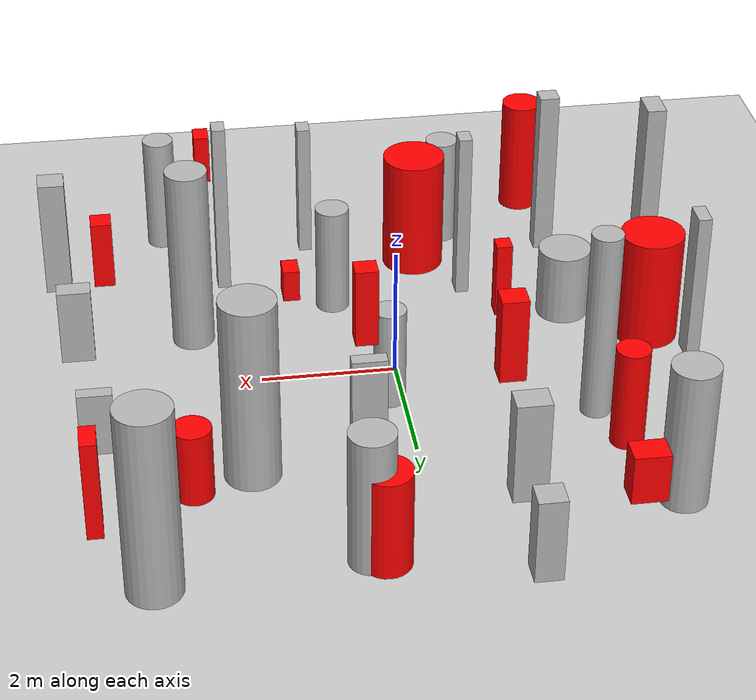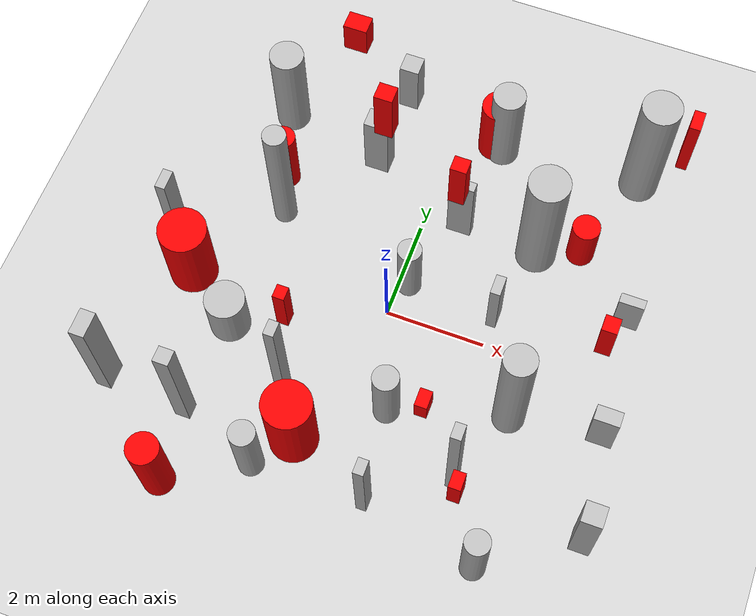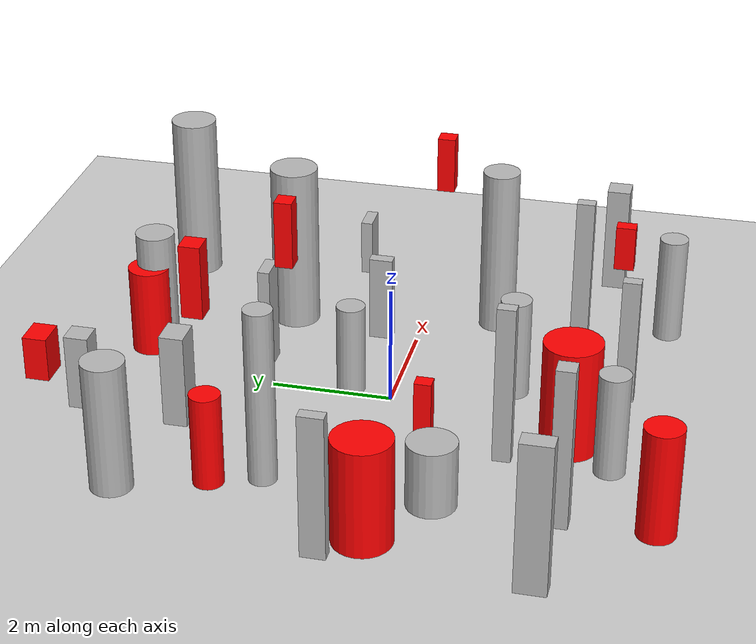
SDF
<?xml version='1.0' encoding='utf-8'?>
<sdf version="1.7">
            <world name="default">
                <light name="sun" type="directional">
                <cast_shadows>1</cast_shadows>
                <pose>0 0 10 0 -0 0</pose>
                <diffuse>0.8 0.8 0.8 1</diffuse>
                <specular>0.2 0.2 0.2 1</specular>
                <attenuation>
                    <range>1000</range>
                    <constant>0.9</constant>
                    <linear>0.01</linear>
                    <quadratic>0.001</quadratic>
                </attenuation>
                <direction>-0.5 0.1 -0.9</direction>
                <spot>
                    <inner_angle>0</inner_angle>
                    <outer_angle>0</outer_angle>
                    <falloff>0</falloff>
                </spot>
                </light>
                <model name="ground_plane">
                <static>1</static>
                <link name="link">
                    <collision name="collision">
                    <geometry>
                        <plane>
                        <normal>0 0 1</normal>
                        <size>100 100</size>
                        </plane>
                    </geometry>
                    <surface>
                        <contact>
                        <collide_bitmask>65535</collide_bitmask>
                        <ode />
                        </contact>
                        <friction>
                        <ode>
                            <mu>100</mu>
                            <mu2>50</mu2>
                        </ode>
                        <torsional>
                            <ode />
                        </torsional>
                        </friction>
                        <bounce />
                    </surface>
                    <max_contacts>10</max_contacts>
                    </collision>
                    <visual name="visual">
                    <cast_shadows>0</cast_shadows>
                    <geometry>
                        <plane>
                        <normal>0 0 1</normal>
                        <size>100 100</size>
                        </plane>
                    </geometry>
                    <material>
                        <script>
                        <uri>file://media/materials/scripts/gazebo.material</uri>
                        <name>Gazebo/Grey</name>
                        </script>
                    </material>
                    </visual>
                    <self_collide>0</self_collide>
                    <enable_wind>0</enable_wind>
                    <kinematic>0</kinematic>
                </link>
                </model>
                <gravity>0 0 -9.8</gravity>
                <magnetic_field>6e-06 2.3e-05 -4.2e-05</magnetic_field>
                <atmosphere type="adiabatic" />
                <physics type="ode">
                <max_step_size>0.001</max_step_size>
                <real_time_factor>1</real_time_factor>
                <real_time_update_rate>1000</real_time_update_rate>
                </physics>
                <scene>
                <ambient>0.4 0.4 0.4 1</ambient>
                <background>0.7 0.7 0.7 1</background>
                <shadows>1</shadows>
                </scene>
                <wind />
                <spherical_coordinates>
                <surface_model>EARTH_WGS84</surface_model>
                <latitude_deg>0</latitude_deg>
                <longitude_deg>0</longitude_deg>
                <elevation>0</elevation>
                <heading_deg>0</heading_deg>
                </spherical_coordinates>

                            <model name="cylinder_0_0.7_0.7_2.1">
                                <static>true</static>
                                <pose>0.9762700785464951 4.30378732744839 1.0448831829968968 0 0 0</pose>
                                <link name="link">
                                    <visual name="visual">
                                        <geometry>
                                            <cylinder>
                                                <radius>0.3270964398016714</radius>
                                                <length>2.0897663659937935</length>
                                            </cylinder>
                                        </geometry>
                                    </visual>
                                    <collision name="collision">
                                        <geometry>
                                            <cylinder>
                                                <radius>0.3270964398016714</radius>
                                                <length>2.0897663659937935</length>
                                            </cylinder>
                                        </geometry>

                                        <collision>
                                            <collide_bitmask>0x1</collide_bitmask>
                                            <collide_with>0x2</collide_with>
                                        </collision>
                                    </collision>
                                </link>
                            </model>

                            <model name="cylinder_1_0.6_0.6_2.9">
                                <static>true</static>
                                <pose>2.917882261333123 -1.2482557747461502 1.4636627605010293 0 0 0</pose>
                                <link name="link">
                                    <visual name="visual">
                                        <geometry>
                                            <cylinder>
                                                <radius>0.3150324556477333</radius>
                                                <length>2.9273255210020586</length>
                                            </cylinder>
                                        </geometry>
                                    </visual>
                                    <collision name="collision">
                                        <geometry>
                                            <cylinder>

                                                <radius>0.3150324556477333</radius>
                                                <length>2.9273255210020586</length>
                                            </cylinder>
                                        </geometry>

                                        <collision>
                                            <collide_bitmask>0x1</collide_bitmask>
                                            <collide_with>0x2</collide_with>
                                        </collision>
                                    </collision>
                                </link>
                            </model>

                            <model name="cylinder_7_0.8_0.8_2.9">
                            <static>true</static>
                            <pose>2.352709941517542 2.2419144544484286 1.4437480785146242 0 0 0</pose>
                            <link name="link">
                                <visual name="visual">
                                <geometry>
                                    <cylinder>
                                        <radius>0.404546089731045</radius>
                                        <length>2.8874961570292483</length>
                                    </cylinder>
                                </geometry>
                                </visual>
                            <collision name="collision"><geometry><box><size>0.80909217946209 0.80909217946209 2.8874961570292483</size></box></geometry><gazebo><collision_bitmask>0x1</collision_bitmask><collision_mask>0x2</collision_mask></gazebo></collision></link>
                            </model>

                            <model name="cylinder_8_0.8_0.8_1.1">
                            <static>true</static>
                            <pose>-2.80984198852428 -1.259360924013171 0.5602254716292698 0 0 0</pose>
                            <link name="link">
                                <visual name="visual">
                                <geometry>
                                    <cylinder>
                                        <radius>0.4000300146337003</radius>
                                        <length>1.1204509432585397</length>
                                    </cylinder>
                                </geometry>
                                </visual>
                            <collision name="collision"><geometry><box><size>0.8000600292674006 0.8000600292674006 1.1204509432585397</size></box></geometry><gazebo><collision_bitmask>0x1</collision_bitmask><collision_mask>0x2</collision_mask></gazebo></collision></link>
                            </model>

                            <model name="cylinder_9_0.5_0.5_3.0">
                            <static>true</static>
                            <pose>-2.725784581147548 1.4039354083575937 1.4883738380592262 0 0 0</pose>
                            <link name="link">
                                <visual name="visual">
                                <geometry>
                                    <cylinder>
                                        <radius>0.23061344322440844</radius>
                                        <length>2.9767476761184524</length>
                                    </cylinder>
                                </geometry>
                                </visual>
                            <collision name="collision"><geometry><box><size>0.4612268864488169 0.4612268864488169 2.9767476761184524</size></box></geometry><gazebo><collision_bitmask>0x1</collision_bitmask><collision_mask>0x2</collision_mask></gazebo></collision></link>
                            </model>

                            <model name="cylinder_19_0.8_0.8_2.9">
                            <static>true</static>
                            <pose>3.850631801555318 4.50508559639281 1.4560836347232238 0 0 0</pose>
                            <link name="link">
                                <visual name="visual">
                                <geometry>
                                    <cylinder>
                                        <radius>0.3931970597688912</radius>
                                        <length>2.9121672694464475</length>
                                    </cylinder>
                                </geometry>
                                </visual>
                            <collision name="collision"><geometry><box><size>0.7863941195377824 0.7863941195377824 2.9121672694464475</size></box></geometry><gazebo><collision_bitmask>0x1</collision_bitmask><collision_mask>0x2</collision_mask></gazebo></collision></link>
                            </model>

                            <model name="cylinder_20_0.5_0.5_1.9">
                            <static>true</static>
                            <pose>3.2034707498537003 -4.198447855791119 0.9287687009457661 0 0 0</pose>
                            <link name="link">
                                <visual name="visual">
                                <geometry>
                                    <cylinder>
                                        <radius>0.24064221926673507</radius>
                                        <length>1.8575374018915323</length>
                                    </cylinder>
                                </geometry>
                                </visual>
                            <collision name="collision"><geometry><box><size>0.48128443853347014 0.48128443853347014 1.8575374018915323</size></box></geometry><gazebo><collision_bitmask>0x1</collision_bitmask><collision_mask>0x2</collision_mask></gazebo></collision></link>
                            </model>

                            <model name="cylinder_27_0.5_0.5_1.8">
                            <static>true</static>
                            <pose>-1.3116674888375854 -3.764082360117948 0.8777518392924809 0 0 0</pose>
                            <link name="link">
                                <visual name="visual">
                                <geometry>
                                    <cylinder>
                                        <radius>0.25388110326789043</radius>
                                        <length>1.7555036785849618</length>
                                    </cylinder>
                                </geometry>
                                </visual>
                            <collision name="collision"><geometry><box><size>0.5077622065357809 0.5077622065357809 1.7555036785849618</size></box></geometry><gazebo><collision_bitmask>0x1</collision_bitmask><collision_mask>0x2</collision_mask></gazebo></collision></link>
                            </model>

                            <model name="cylinder_37_0.5_0.5_1.6">
                            <static>true</static>
                            <pose>0.2003370463650036 0.7235498940690395 0.7775960977317661 0 0 0</pose>
                            <link name="link">
                                <visual name="visual">
                                <geometry>
                                    <cylinder>
                                        <radius>0.23865816963989606</radius>
                                        <length>1.5551921954635322</length>
                                    </cylinder>
                                </geometry>
                                </visual>
                            <collision name="collision"><geometry><box><size>0.4773163392797921 0.4773163392797921 1.5551921954635322</size></box></geometry><gazebo><collision_bitmask>0x1</collision_bitmask><collision_mask>0x2</collision_mask></gazebo></collision></link>
                            </model>

                            <model name="cylinder_45_0.7_0.7_2.2">
                            <static>true</static>
                            <pose>-3.440239981838406 3.606973320300032 1.107249374011541 0 0 0</pose>
                            <link name="link">
                                <visual name="visual">
                                <geometry>
                                    <cylinder>
                                        <radius>0.3432939508629248</radius>
                                        <length>2.214498748023082</length>
                                    </cylinder>
                                </geometry>
                                </visual>
                            <collision name="collision"><geometry><box><size>0.6865879017258496 0.6865879017258496 2.214498748023082</size></box></geometry><gazebo><collision_bitmask>0x1</collision_bitmask><collision_mask>0x2</collision_mask></gazebo></collision></link>
                            </model>

                            <model name="cylinder_48_0.5_0.5_1.7">
                            <static>true</static>
                            <pose>0.6983370985416784 -1.9151276412148235 0.8650998770600098 0 0 0</pose>
                            <link name="link">
                                <visual name="visual">
                                <geometry>
                                    <cylinder>
                                        <radius>0.25717007448202045</radius>
                                        <length>1.7301997541200196</length>
                                    </cylinder>
                                </geometry>
                                </visual>
                            <collision name="collision"><geometry><box><size>0.5143401489640409 0.5143401489640409 1.7301997541200196</size></box></geometry><gazebo><collision_bitmask>0x1</collision_bitmask><collision_mask>0x2</collision_mask></gazebo></collision></link>
                            </model>

                            <model name="box_4_0.2_0.4_2.4">
                            <static>true</static>
                            <pose>-4.467005395816209 0.1268583864760835 1.206410577667011 0 0 0</pose>
                            <link name="link">
                                <visual name="visual">
                                <geometry>
                                    <box>
                                        <size>0.2 0.4 2.4</size>
                                    </box>
                                </geometry>
                                </visual>
                            <collision name="collision"><geometry><box><size>0.2 0.4 2.4</size></box></geometry><gazebo><collision_bitmask>0x1</collision_bitmask><collision_mask>0x2</collision_mask></gazebo></collision></link>
                            </model>

                            <model name="box_10_0.5_0.4_1.6">
                            <static>true</static>
                            <pose>-1.3480671386427048 3.1960805878154357 0.8062690951677486 0 0 0</pose>
                            <link name="link">
                                <visual name="visual">
                                <geometry>
                                    <box>
                                        <size>0.5 0.4 1.6</size>
                                    </box>
                                </geometry>
                                </visual>
                            <collision name="collision"><geometry><box><size>0.5 0.4 1.6</size></box></geometry><gazebo><collision_bitmask>0x1</collision_bitmask><collision_mask>0x2</collision_mask></gazebo></collision></link>
                            </model>

                            <model name="box_18_0.3_0.5_2.5">
                            <static>true</static>
                            <pose>-4.564360170334614 -3.0721112863463134 1.2664119839578025 0 0 0</pose>
                            <link name="link">
                                <visual name="visual">
                                <geometry>
                                    <box>
                                        <size>0.3 0.5 2.5</size>
                                    </box>
                                </geometry>
                                </visual>
                            <collision name="collision"><geometry><box><size>0.3 0.5 2.5</size></box></geometry><gazebo><collision_bitmask>0x1</collision_bitmask><collision_mask>0x2</collision_mask></gazebo></collision></link>
                            </model>

                            <model name="box_22_0.4_0.4_1.9">
                            <static>true</static>
                            <pose>4.916316481088979 -3.06732546911781 0.9431091384338327 0 0 0</pose>
                            <link name="link">
                                <visual name="visual">
                                <geometry>
                                    <box>
                                        <size>0.4 0.4 1.9</size>
                                    </box>
                                </geometry>
                                </visual>
                            <collision name="collision"><geometry><box><size>0.4 0.4 1.9</size></box></geometry><gazebo><collision_bitmask>0x1</collision_bitmask><collision_mask>0x2</collision_mask></gazebo></collision></link>
                            </model>

                            <model name="box_28_0.2_0.3_2.2">
                            <static>true</static>
                            <pose>0.9291258212460001 -3.7348301979196563 1.0775940791907155 0 0 0</pose>
                            <link name="link">
                                <visual name="visual">
                                <geometry>
                                    <box>
                                        <size>0.2 0.3 2.2</size>
                                    </box>
                                </geometry>
                                </visual>
                            <collision name="collision"><geometry><box><size>0.2 0.3 2.2</size></box></geometry><gazebo><collision_bitmask>0x1</collision_bitmask><collision_mask>0x2</collision_mask></gazebo></collision></link>
                            </model>

                            <model name="box_30_0.5_0.2_1.0">
                            <static>true</static>
                            <pose>4.464506109105033 1.4159431969696623 0.5181416660316917 0 0 0</pose>
                            <link name="link">
                                <visual name="visual">
                                <geometry>
                                    <box>
                                        <size>0.5 0.2 1.0</size>
                                    </box>
                                </geometry>
                                </visual>
                            <collision name="collision"><geometry><box><size>0.5 0.2 1.0</size></box></geometry><gazebo><collision_bitmask>0x1</collision_bitmask><collision_mask>0x2</collision_mask></gazebo></collision></link>
                            </model>

                            <model name="box_33_0.5_0.3_1.2">
                            <static>true</static>
                            <pose>4.672418581388806 -1.0200588335684948 0.597226469354613 0 0 0</pose>
                            <link name="link">
                                <visual name="visual">
                                <geometry>
                                    <box>
                                        <size>0.5 0.3 1.2</size>
                                    </box>
                                </geometry>
                                </visual>
                            <collision name="collision"><geometry><box><size>0.5 0.3 1.2</size></box></geometry><gazebo><collision_bitmask>0x1</collision_bitmask><collision_mask>0x2</collision_mask></gazebo></collision></link>
                            </model>

                            <model name="box_34_0.4_0.4_1.3">
                            <static>true</static>
                            <pose>-1.247919934143214 4.86622578327642 0.6558907168274684 0 0 0</pose>
                            <link name="link">
                                <visual name="visual">
                                <geometry>
                                    <box>
                                        <size>0.4 0.4 1.3</size>
                                    </box>
                                </geometry>
                                </visual>
                            <collision name="collision"><geometry><box><size>0.4 0.4 1.3</size></box></geometry><gazebo><collision_bitmask>0x1</collision_bitmask><collision_mask>0x2</collision_mask></gazebo></collision></link>
                            </model>

                            <model name="box_35_0.5_0.2_1.8">
                            <static>true</static>
                            <pose>0.7252978011621849 2.27458122753273 0.9199412609170742 0 0 0</pose>
                            <link name="link">
                                <visual name="visual">
                                <geometry>
                                    <box>
                                        <size>0.5 0.2 1.8</size>
                                    </box>
                                </geometry>
                                </visual>
                            <collision name="collision"><geometry><box><size>0.5 0.2 1.8</size></box></geometry><gazebo><collision_bitmask>0x1</collision_bitmask><collision_mask>0x2</collision_mask></gazebo></collision></link>
                            </model>

                            <model name="box_37_0.2_0.3_2.7">
                            <static>true</static>
                            <pose>-1.355811067008446 -2.0894462399592717 1.3683394874879498 0 0 0</pose>
                            <link name="link">
                                <visual name="visual">
                                <geometry>
                                    <box>
                                        <size>0.2 0.3 2.7</size>
                                    </box>
                                </geometry>
                                </visual>
                            <collision name="collision"><geometry><box><size>0.2 0.3 2.7</size></box></geometry><gazebo><collision_bitmask>0x1</collision_bitmask><collision_mask>0x2</collision_mask></gazebo></collision></link>
                            </model>

                            <model name="box_39_0.2_0.4_1.5">
                            <static>true</static>
                            <pose>2.000524343217922 0.6195940721407105 0.7742883198308734 0 0 0</pose>
                            <link name="link">
                                <visual name="visual">
                                <geometry>
                                    <box>
                                        <size>0.2 0.4 1.5</size>
                                    </box>
                                </geometry>
                                </visual>
                            <collision name="collision"><geometry><box><size>0.2 0.4 1.5</size></box></geometry><gazebo><collision_bitmask>0x1</collision_bitmask><collision_mask>0x2</collision_mask></gazebo></collision></link>
                            </model>

                            <model name="box_47_0.2_0.3_2.8">
                            <static>true</static>
                            <pose>2.3285115651441597 -2.772124970157801 1.397285272580829 0 0 0</pose>
                            <link name="link">
                                <visual name="visual">
                                <geometry>
                                    <box>
                                        <size>0.2 0.3 2.8</size>
                                    </box>
                                </geometry>
                                </visual>
                            <collision name="collision"><geometry><box><size>0.2 0.3 2.8</size></box></geometry><gazebo><collision_bitmask>0x1</collision_bitmask><collision_mask>0x2</collision_mask></gazebo></collision></link>
                            </model>

                            <model name="box_48_0.3_0.3_2.7">
                            <static>true</static>
                            <pose>-2.8941664654011445 -3.2153695479817106 1.3740450250527239 0 0 0</pose>
                            <link name="link">
                                <visual name="visual">
                                <geometry>
                                    <box>
                                        <size>0.3 0.3 2.7</size>
                                    </box>
                                </geometry>
                                </visual>
                            <collision name="collision"><geometry><box><size>0.3 0.3 2.7</size></box></geometry><gazebo><collision_bitmask>0x1</collision_bitmask><collision_mask>0x2</collision_mask></gazebo></collision></link>
                            </model>

                            <model name="dynamic_cylinder_0_0.5_0.5_1.6">
                            <static>true</static>
                            <pose>-2.9946536448126686 2.1934232710004764 0.7857869475825525 0 0 0</pose>
                            <link name="link">
                                <visual name="visual">
                                    <geometry>
                                        <cylinder>
                                            <radius>0.24845360426862487</radius>
                                            <length>1.571573895165105</length>
                                        </cylinder>
                                    </geometry>
                                    <material>
                                        <ambient>1 0 0 1</ambient>
                                        <diffuse>1 0 0 1</diffuse>
                                        <specular>0.5 0.5 0.5 1</specular>
                                    </material>
                                </visual>
                            <collision name="collision"><geometry><box><size>0.49690720853724973 0.49690720853724973 1.571573895165105</size></box></geometry><gazebo><collision_bitmask>0x1</collision_bitmask><collision_mask>0x2</collision_mask></gazebo></collision></link>
                            <plugin name="obstacle_motion" filename="libobstaclePathPlugin.so">
                                <orientation>false</orientation>
                                <loop>0</loop>
                                <velocity>0.9441818211455691</velocity>
                                <path>
                                <waypoint>-2.9946536448126686 2.1934232710004764 0.7857869475825525</waypoint>
                                <waypoint>7.7701436804043915 3.133102733647588 0.7857869475825525</waypoint>
                                </path>
                            </plugin>
                            </model>

                            <model name="dynamic_cylinder_1_0.6_0.6_1.9">
                            <static>true</static>
                            <pose>-2.797294724296271 -4.646734892248996 0.9311371469944523 0 0 0</pose>
                            <link name="link">
                                <visual name="visual">
                                    <geometry>
                                        <cylinder>
                                            <radius>0.30979703292790034</radius>
                                            <length>1.8622742939889045</length>
                                        </cylinder>
                                    </geometry>
                                    <material>
                                        <ambient>1 0 0 1</ambient>
                                        <diffuse>1 0 0 1</diffuse>
                                        <specular>0.5 0.5 0.5 1</specular>
                                    </material>
                                </visual>
                            <collision name="collision"><geometry><box><size>0.6195940658558007 0.6195940658558007 1.8622742939889045</size></box></geometry><gazebo><collision_bitmask>0x1</collision_bitmask><collision_mask>0x2</collision_mask></gazebo></collision></link>
                            <plugin name="obstacle_motion" filename="libobstaclePathPlugin.so">
                                <orientation>false</orientation>
                                <loop>0</loop>
                                <velocity>0.5596992337409327</velocity>
                                <path>
                                <waypoint>-2.797294724296271 -4.646734892248996 0.9311371469944523</waypoint>
                                <waypoint>-9.231721088843495 7.669628419277412 0.9311371469944523</waypoint>
                                </path>
                            </plugin>
                            </model>

                            <model name="dynamic_cylinder_3_1.0_1.0_1.9">
                            <static>true</static>
                            <pose>-0.7442642711546288 -3.0412325565278575 0.9493577862690079 0 0 0</pose>
                            <link name="link">
                                <visual name="visual">
                                    <geometry>
                                        <cylinder>
                                            <radius>0.47746672400213486</radius>
                                            <length>1.8987155725380158</length>
                                        </cylinder>
                                    </geometry>
                                    <material>
                                        <ambient>1 0 0 1</ambient>
                                        <diffuse>1 0 0 1</diffuse>
                                        <specular>0.5 0.5 0.5 1</specular>
                                    </material>
                                </visual>
                            <collision name="collision"><geometry><box><size>0.9549334480042697 0.9549334480042697 1.8987155725380158</size></box></geometry><gazebo><collision_bitmask>0x1</collision_bitmask><collision_mask>0x2</collision_mask></gazebo></collision></link>
                            <plugin name="obstacle_motion" filename="libobstaclePathPlugin.so">
                                <orientation>false</orientation>
                                <loop>0</loop>
                                <velocity>0.7043768180558272</velocity>
                                <path>
                                <waypoint>-0.7442642711546288 -3.0412325565278575 0.9493577862690079</waypoint>
                                <waypoint>-6.583994029169982 -2.9642028622316214 0.9493577862690079</waypoint>
                                </path>
                            </plugin>
                            </model>

                            <model name="dynamic_cylinder_10_1.0_1.0_1.8">
                            <static>true</static>
                            <pose>-3.937515791268204 -0.46207247195070167 0.8885212608367177 0 0 0</pose>
                            <link name="link">
                                <visual name="visual">
                                    <geometry>
                                        <cylinder>
                                            <radius>0.4780384155585556</radius>
                                            <length>1.7770425216734353</length>
                                        </cylinder>
                                    </geometry>
                                    <material>
                                        <ambient>1 0 0 1</ambient>
                                        <diffuse>1 0 0 1</diffuse>
                                        <specular>0.5 0.5 0.5 1</specular>
                                    </material>
                                </visual>
                            <collision name="collision"><geometry><box><size>0.9560768311171112 0.9560768311171112 1.7770425216734353</size></box></geometry><gazebo><collision_bitmask>0x1</collision_bitmask><collision_mask>0x2</collision_mask></gazebo></collision></link>
                            <plugin name="obstacle_motion" filename="libobstaclePathPlugin.so">
                                <orientation>false</orientation>
                                <loop>0</loop>
                                <velocity>0.6928920416409474</velocity>
                                <path>
                                <waypoint>-3.937515791268204 -0.46207247195070167 0.8885212608367177</waypoint>
                                <waypoint>4.000648212438945 -6.927215493583638 0.8885212608367177</waypoint>
                                </path>
                            </plugin>
                            </model>

                            <model name="dynamic_cylinder_16_0.7_0.7_1.5">
                            <static>true</static>
                            <pose>0.7855122462073894 4.377357266246214 0.7631757451365173 0 0 0</pose>
                            <link name="link">
                                <visual name="visual">
                                    <geometry>
                                        <cylinder>
                                            <radius>0.3483594185648371</radius>
                                            <length>1.5263514902730346</length>
                                        </cylinder>
                                    </geometry>
                                    <material>
                                        <ambient>1 0 0 1</ambient>
                                        <diffuse>1 0 0 1</diffuse>
                                        <specular>0.5 0.5 0.5 1</specular>
                                    </material>
                                </visual>
                            <collision name="collision"><geometry><box><size>0.6967188371296742 0.6967188371296742 1.5263514902730346</size></box></geometry><gazebo><collision_bitmask>0x1</collision_bitmask><collision_mask>0x2</collision_mask></gazebo></collision></link>
                            <plugin name="obstacle_motion" filename="libobstaclePathPlugin.so">
                                <orientation>false</orientation>
                                <loop>0</loop>
                                <velocity>0.8466830503100422</velocity>
                                <path>
                                <waypoint>0.7855122462073894 4.377357266246214 0.7631757451365173</waypoint>
                                <waypoint>0.8972539509822575 -4.732949260121513 0.7631757451365173</waypoint>
                                </path>
                            </plugin>
                            </model>

                            <model name="dynamic_cylinder_27_0.6_0.6_1.1">
                            <static>true</static>
                            <pose>3.186537886977817 2.5733640891092513 0.5663459130917383 0 0 0</pose>
                            <link name="link">
                                <visual name="visual">
                                    <geometry>
                                        <cylinder>
                                            <radius>0.27818766821510793</radius>
                                            <length>1.1326918261834766</length>
                                        </cylinder>
                                    </geometry>
                                    <material>
                                        <ambient>1 0 0 1</ambient>
                                        <diffuse>1 0 0 1</diffuse>
                                        <specular>0.5 0.5 0.5 1</specular>
                                    </material>
                                </visual>
                            <collision name="collision"><geometry><box><size>0.5563753364302159 0.5563753364302159 1.1326918261834766</size></box></geometry><gazebo><collision_bitmask>0x1</collision_bitmask><collision_mask>0x2</collision_mask></gazebo></collision></link>
                            <plugin name="obstacle_motion" filename="libobstaclePathPlugin.so">
                                <orientation>false</orientation>
                                <loop>0</loop>
                                <velocity>0.5393587072344521</velocity>
                                <path>
                                <waypoint>3.186537886977817 2.5733640891092513 0.5663459130917383</waypoint>
                                <waypoint>8.323761386493018 -7.227517745884575 0.5663459130917383</waypoint>
                                </path>
                            </plugin>
                            </model>

                            <model name="dynamic_box_1_0.3_0.4_0.5">
                            <static>true</static>
                            <pose>1.373606283478308 -1.7382147720256107 0.599659964622127 0 0 0</pose>
                            <link name="link">
                                <visual name="visual">
                                    <geometry>
                                        <box>
                                            <size>0.2530435267666224 0.36498977423415135 0.5130808387106492</size>
                                        </box>
                                    </geometry>
                                    <material>
                                        <ambient>1 0 0 1</ambient>
                                        <diffuse>1 0 0 1</diffuse>
                                        <specular>0.5 0.5 0.5 1</specular>
                                    </material>
                                </visual>
                            <collision name="collision"><geometry><box><size>0.2530435267666224 0.36498977423415135 0.5130808387106492</size></box></geometry><gazebo><collision_bitmask>0x1</collision_bitmask><collision_mask>0x2</collision_mask></gazebo></collision></link>
                            <plugin name="obstacle_motion" filename="libobstaclePathPlugin.so">
                                <orientation>false</orientation>
                                <loop>0</loop>
                                <velocity>0.663339712981367</velocity>
                                <path>
                                <waypoint>1.373606283478308 -1.7382147720256107 0.599659964622127</waypoint>
                                <waypoint>6.5938005274865255 -9.611868846224755 0.8690028077160052</waypoint>
                                </path>
                            </plugin>
                            </model>

                            <model name="dynamic_box_7_0.5_0.4_0.7">
                            <static>true</static>
                            <pose>-2.464910674984358 4.996080583674585 1.6269235409979816 0 0 0</pose>
                            <link name="link">
                                <visual name="visual">
                                    <geometry>
                                        <box>
                                            <size>0.49254132567175624 0.3824290819246837 0.7167628052572891</size>
                                        </box>
                                    </geometry>
                                    <material>
                                        <ambient>1 0 0 1</ambient>
                                        <diffuse>1 0 0 1</diffuse>
                                        <specular>0.5 0.5 0.5 1</specular>
                                    </material>
                                </visual>
                            <collision name="collision"><geometry><box><size>0.49254132567175624 0.3824290819246837 0.7167628052572891</size></box></geometry><gazebo><collision_bitmask>0x1</collision_bitmask><collision_mask>0x2</collision_mask></gazebo></collision></link>
                            <plugin name="obstacle_motion" filename="libobstaclePathPlugin.so">
                                <orientation>false</orientation>
                                <loop>0</loop>
                                <velocity>0.6554260282422725</velocity>
                                <path>
                                <waypoint>-2.464910674984358 4.996080583674585 1.6269235409979816</waypoint>
                                <waypoint>4.450669148785224 -8.064212682156864 0.5550837113101732</waypoint>
                                </path>
                            </plugin>
                            </model>

                            <model name="dynamic_box_9_0.3_0.3_1.2">
                            <static>true</static>
                            <pose>0.7285261849534859 1.9442001830950986 2.492408064485497 0 0 0</pose>
                            <link name="link">
                                <visual name="visual">
                                    <geometry>
                                        <box>
                                            <size>0.31734366568543004 0.300503545662104 1.1694322765117091</size>
                                        </box>
                                    </geometry>
                                    <material>
                                        <ambient>1 0 0 1</ambient>
                                        <diffuse>1 0 0 1</diffuse>
                                        <specular>0.5 0.5 0.5 1</specular>
                                    </material>
                                </visual>
                            <collision name="collision"><geometry><box><size>0.31734366568543004 0.300503545662104 1.1694322765117091</size></box></geometry><gazebo><collision_bitmask>0x1</collision_bitmask><collision_mask>0x2</collision_mask></gazebo></collision></link>
                            <plugin name="obstacle_motion" filename="libobstaclePathPlugin.so">
                                <orientation>false</orientation>
                                <loop>0</loop>
                                <velocity>0.9638152427706254</velocity>
                                <path>
                                <waypoint>0.7285261849534859 1.9442001830950986 2.492408064485497</waypoint>
                                <waypoint>-3.470358788563363 6.389981041194854 1.675408245896195</waypoint>
                                </path>
                            </plugin>
                            </model>

                            <model name="dynamic_box_16_0.2_0.3_0.8">
                            <static>true</static>
                            <pose>2.558456562346711 -3.437800377987024 1.9465736094540858 0 0 0</pose>
                            <link name="link">
                                <visual name="visual">
                                    <geometry>
                                        <box>
                                            <size>0.2310953051733298 0.32751613763558485 0.7696474951189869</size>
                                        </box>
                                    </geometry>
                                    <material>
                                        <ambient>1 0 0 1</ambient>
                                        <diffuse>1 0 0 1</diffuse>
                                        <specular>0.5 0.5 0.5 1</specular>
                                    </material>
                                </visual>
                            <collision name="collision"><geometry><box><size>0.2310953051733298 0.32751613763558485 0.7696474951189869</size></box></geometry><gazebo><collision_bitmask>0x1</collision_bitmask><collision_mask>0x2</collision_mask></gazebo></collision></link>
                            <plugin name="obstacle_motion" filename="libobstaclePathPlugin.so">
                                <orientation>false</orientation>
                                <loop>0</loop>
                                <velocity>0.5378542502736708</velocity>
                                <path>
                                <waypoint>2.558456562346711 -3.437800377987024 1.9465736094540858</waypoint>
                                <waypoint>-9.915253364551994 -0.8856896341425582 2.170527046193845</waypoint>
                                </path>
                            </plugin>
                            </model>

                            <model name="dynamic_box_20_0.2_0.3_1.2">
                            <static>true</static>
                            <pose>-1.7680918422856866 -0.9111421342217909 0.9075737312565388 0 0 0</pose>
                            <link name="link">
                                <visual name="visual">
                                    <geometry>
                                        <box>
                                            <size>0.2373161613055156 0.2739211489972099 1.199545750798512</size>
                                        </box>
                                    </geometry>
                                    <material>
                                        <ambient>1 0 0 1</ambient>
                                        <diffuse>1 0 0 1</diffuse>
                                        <specular>0.5 0.5 0.5 1</specular>
                                    </material>
                                </visual>
                            <collision name="collision"><geometry><box><size>0.2373161613055156 0.2739211489972099 1.199545750798512</size></box></geometry><gazebo><collision_bitmask>0x1</collision_bitmask><collision_mask>0x2</collision_mask></gazebo></collision></link>
                            <plugin name="obstacle_motion" filename="libobstaclePathPlugin.so">
                                <orientation>false</orientation>
                                <loop>0</loop>
                                <velocity>0.7481958929051509</velocity>
                                <path>
                                <waypoint>-1.7680918422856866 -0.9111421342217909 0.9075737312565388</waypoint>
                                <waypoint>-8.765765392361967 0.20468414915677258 0.8303807025615693</waypoint>
                                </path>
                            </plugin>
                            </model>

                            <model name="dynamic_box_21_0.3_0.3_1.0">
                            <static>true</static>
                            <pose>4.190408162788486 -0.06541744674206029 2.402395697469707 0 0 0</pose>
                            <link name="link">
                                <visual name="visual">
                                    <geometry>
                                        <box>
                                            <size>0.29029176622488706 0.30794555372527216 0.9968702464984072</size>
                                        </box>
                                    </geometry>
                                    <material>
                                        <ambient>1 0 0 1</ambient>
                                        <diffuse>1 0 0 1</diffuse>
                                        <specular>0.5 0.5 0.5 1</specular>
                                    </material>
                                </visual>
                            <collision name="collision"><geometry><box><size>0.29029176622488706 0.30794555372527216 0.9968702464984072</size></box></geometry><gazebo><collision_bitmask>0x1</collision_bitmask><collision_mask>0x2</collision_mask></gazebo></collision></link>
                            <plugin name="obstacle_motion" filename="libobstaclePathPlugin.so">
                                <orientation>false</orientation>
                                <loop>0</loop>
                                <velocity>0.550463289818544</velocity>
                                <path>
                                <waypoint>4.190408162788486 -0.06541744674206029 2.402395697469707</waypoint>
                                <waypoint>-8.08984742825884 0.362207740525168 2.407655705315584</waypoint>
                                </path>
                            </plugin>
                            </model>

                            <model name="dynamic_box_26_0.2_0.4_1.5">
                            <static>true</static>
                            <pose>4.54475844901677 4.636098265112004 1.9274453888489673 0 0 0</pose>
                            <link name="link">
                                <visual name="visual">
                                    <geometry>
                                        <box>
                                            <size>0.21624689394986982 0.4183197756210159 1.4534944101540985</size>
                                        </box>
                                    </geometry>
                                    <material>
                                        <ambient>1 0 0 1</ambient>
                                        <diffuse>1 0 0 1</diffuse>
                                        <specular>0.5 0.5 0.5 1</specular>
                                    </material>
                                </visual>
                            <collision name="collision"><geometry><box><size>0.21624689394986982 0.4183197756210159 1.4534944101540985</size></box></geometry><gazebo><collision_bitmask>0x1</collision_bitmask><collision_mask>0x2</collision_mask></gazebo></collision></link>
                            <plugin name="obstacle_motion" filename="libobstaclePathPlugin.so">
                                <orientation>false</orientation>
                                <loop>0</loop>
                                <velocity>0.8647973155917649</velocity>
                                <path>
                                <waypoint>4.54475844901677 4.636098265112004 1.9274453888489673</waypoint>
                                <waypoint>-1.2821719334695132 9.628423416467733 1.339123036502933</waypoint>
                                </path>
                            </plugin>
                            </model>

                            <model name="dynamic_box_27_0.4_0.3_1.3">
                            <static>true</static>
                            <pose>-1.0875972310569892 2.930229933934317 2.459191218638721 0 0 0</pose>
                            <link name="link">
                                <visual name="visual">
                                    <geometry>
                                        <box>
                                            <size>0.3679003783143384 0.3495749723520408 1.2527815168082577</size>
                                        </box>
                                    </geometry>
                                    <material>
                                        <ambient>1 0 0 1</ambient>
                                        <diffuse>1 0 0 1</diffuse>
                                        <specular>0.5 0.5 0.5 1</specular>
                                    </material>
                                </visual>
                            <collision name="collision"><geometry><box><size>0.3679003783143384 0.3495749723520408 1.2527815168082577</size></box></geometry><gazebo><collision_bitmask>0x1</collision_bitmask><collision_mask>0x2</collision_mask></gazebo></collision></link>
                            <plugin name="obstacle_motion" filename="libobstaclePathPlugin.so">
                                <orientation>false</orientation>
                                <loop>0</loop>
                                <velocity>0.7692682783408609</velocity>
                                <path>
                                <waypoint>-1.0875972310569892 2.930229933934317 2.459191218638721</waypoint>
                                <waypoint>7.37079274514134 3.0503978667121583 2.3430097517799737</waypoint>
                                </path>
                            </plugin>
                            </model>

                            </world>
            </sdf>
